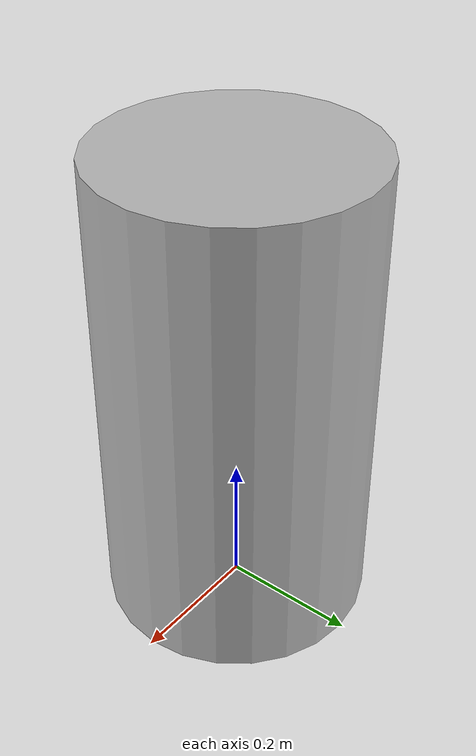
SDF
<?xml version="1.0" ?>
<sdf version="1.6">
  <model name="rwc2024/trashcan">
    <static>true</static>
    <link name="1_link">
      <collision name="1_col">
        <geometry>
            <cylinder>
                <radius>0.195</radius>
                <length>0.7</length>
            </cylinder>
        </geometry>
      </collision>
      <visual name="1_vis">
        <geometry>
            <cylinder>
                <radius>0.195</radius>
                <length>0.7</length>
            </cylinder>
        </geometry>
      </visual>
      <pose>0.0 0.0 0.35 0 0 0</pose>
    </link>
    <link name="on_top_of">
      <virtual_volume name="on_top_of_vv">
        <geometry>
          <cylinder>
            <length>0.25</length>
            <radius>0.19</radius>
          </cylinder>
        </geometry>
      </virtual_volume>
      <pose>0 0 0.825 0 0 0</pose>
    </link>
    <link name="in_front_of">
      <virtual_volume name="in_front_of_vv">
        <geometry>
          <box>
            <size>0.2 0.35 0.01</size>
          </box>
        </geometry>
      </virtual_volume>
      <pose>0.8 0. 0.005 0 0 0</pose>
    </link>
    <static>true</static>

  </model>
</sdf>
